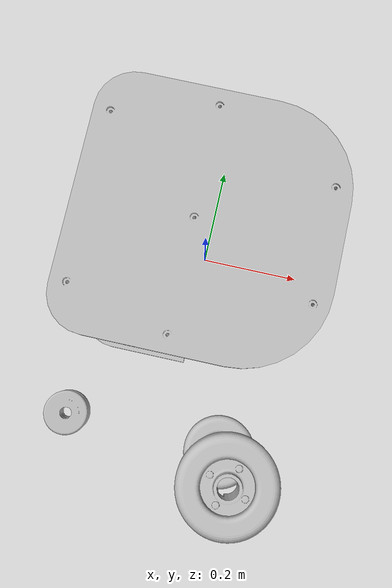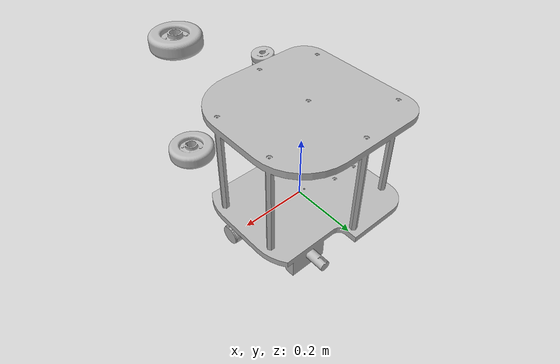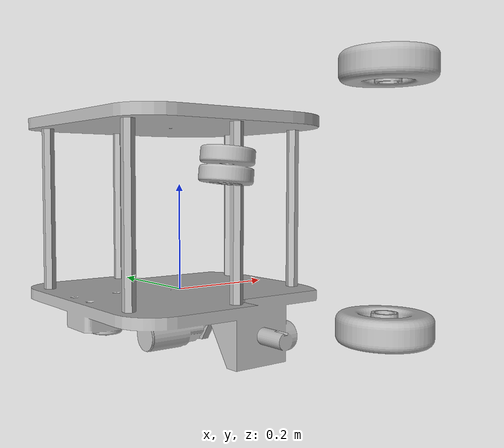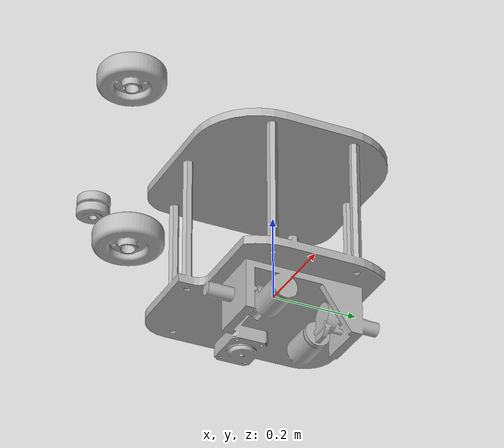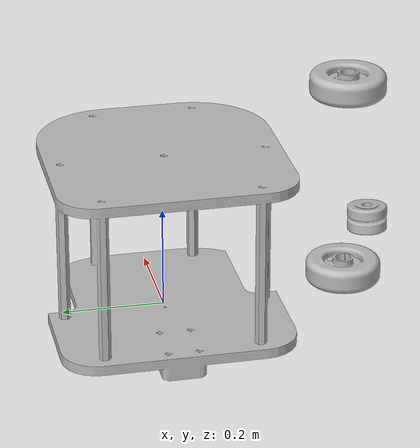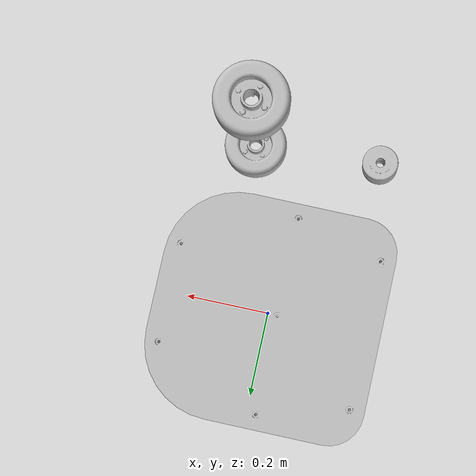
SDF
<sdf version='1.6'>
  <model name='Robor'>
    <link name='Chassis'>
      <pose frame=''>0 0 0 0 -0 0</pose>
      <inertial>
        <pose frame=''>0.029351 -0.581757 0.179182 0 -0 0</pose>
        <mass>10.7426</mass>
        <inertia>
          <ixx>0.144845</ixx>
          <ixy>0.0115947</ixy>
          <ixz>-0.000721381</ixz>
          <iyy>0.259509</iyy>
          <iyz>-4.96766e-05</iyz>
          <izz>0.1548</izz>
        </inertia>
      </inertial>
      <collision name='Chassis_collision'>
        <pose frame=''>0 0 0 0 -0 0</pose>
        <geometry>
          <mesh>
            <scale>1 1 1</scale>
            <uri>model://Robor/meshes/Chassis.STL</uri>
          </mesh>
        </geometry>
      </collision>
      <collision name='Chassis_fixed_joint_lump__Castor Wheel_collision_1'>
        <pose frame=''>-0.16947 -0.36094 0.20391 1.5708 0.10274 0</pose>
        <geometry>
          <mesh>
            <scale>1 1 1</scale>
            <uri>model://Robor/meshes/Castor Wheel.STL</uri>
          </mesh>
        </geometry>
      </collision>
      <visual name='Chassis_visual'>
        <pose frame=''>0 0 0 0 -0 0</pose>
        <geometry>
          <mesh>
            <scale>1 1 1</scale>
            <uri>model://Robor/meshes/Chassis.STL</uri>
          </mesh>
        </geometry>
      </visual>
      <visual name='Chassis_fixed_joint_lump__Castor Wheel_visual_1'>
        <pose frame=''>-0.16947 -0.36094 0.20391 1.5708 0.10274 0</pose>
        <geometry>
          <mesh>
            <scale>1 1 1</scale>
            <uri>model://Robor/meshes/Castor Wheel.STL</uri>
          </mesh>
        </geometry>
      </visual>
    </link>
    <link name='Left Wheel'>
      <pose frame=''>0.11841 -0.39765 0.35775 1.5708 -0 2.7649</pose>
      <inertial>
        <pose frame=''>1.5e-05 0.025016 -1.7e-05 0 -0 0</pose>
        <mass>0.72827</mass>
        <inertia>
          <ixx>0.0013063</ixx>
          <ixy>1.3321e-07</ixy>
          <ixz>-1.3543e-07</ixz>
          <iyy>0.0023567</iyy>
          <iyz>-1.5438e-07</iyz>
          <izz>0.0013063</izz>
        </inertia>
      </inertial>
      <collision name='Left Wheel_collision'>
        <pose frame=''>0 0 0 0 -0 0</pose>
        <geometry>
          <mesh>
            <scale>1 1 1</scale>
            <uri>model://Robor/meshes/Left Wheel.STL</uri>
          </mesh>
        </geometry>
      </collision>
      <visual name='Left Wheel_visual'>
        <pose frame=''>0 0 0 0 -0 0</pose>
        <geometry>
          <mesh>
            <scale>1 1 1</scale>
            <uri>model://Robor/meshes/Left Wheel.STL</uri>
          </mesh>
        </geometry>
      </visual>
    </link>
    <joint name='LW' type='revolute'>
      <child>Left Wheel</child>
      <parent>Chassis</parent>
      <axis>
        <xyz>1e-06 3e-06 1</xyz>
        <limit>
          <lower>-1e+16</lower>
          <upper>1e+16</upper>
        </limit>
        <dynamics>
          <damping>1</damping>
          <friction>0.01</friction>
          <spring_reference>0</spring_reference>
          <spring_stiffness>0</spring_stiffness>
        </dynamics>
        <use_parent_model_frame>1</use_parent_model_frame>
      </axis>
    </joint>
    <link name='Right Wheel'>
      <pose frame=''>0.11841 -0.39765 0 -1.5708 -0 0.78245</pose>
      <inertial>
        <pose frame=''>-0 0.024462 2.2e-05 0 -0 0</pose>
        <mass>0.72827</mass>
        <inertia>
          <ixx>0.0013062</ixx>
          <ixy>2.5001e-20</ixy>
          <ixz>0</ixz>
          <iyy>0.0023567</iyy>
          <iyz>2.039e-07</iyz>
          <izz>0.0013064</izz>
        </inertia>
      </inertial>
      <collision name='Right Wheel_collision'>
        <pose frame=''>0 0 0 0 -0 0</pose>
        <geometry>
          <mesh>
            <scale>1 1 1</scale>
            <uri>model://Robor/meshes/Right Wheel.STL</uri>
          </mesh>
        </geometry>
      </collision>
      <visual name='Right Wheel_visual'>
        <pose frame=''>0 0 0 0 -0 0</pose>
        <geometry>
          <mesh>
            <scale>1 1 1</scale>
            <uri>model://Robor/meshes/Right Wheel.STL</uri>
          </mesh>
        </geometry>
      </visual>
    </link>
    <joint name='RW' type='revolute'>
      <child>Right Wheel</child>
      <parent>Chassis</parent>
      <axis>
        <xyz>3e-06 -3e-06 -1</xyz>
        <limit>
          <lower>-1e+16</lower>
          <upper>1e+16</upper>
        </limit>
        <dynamics>
          <damping>1</damping>
          <friction>0.01</friction>
          <spring_reference>0</spring_reference>
          <spring_stiffness>0</spring_stiffness>
        </dynamics>
        <use_parent_model_frame>1</use_parent_model_frame>
      </axis>
    </joint>
  </model>
</sdf>
